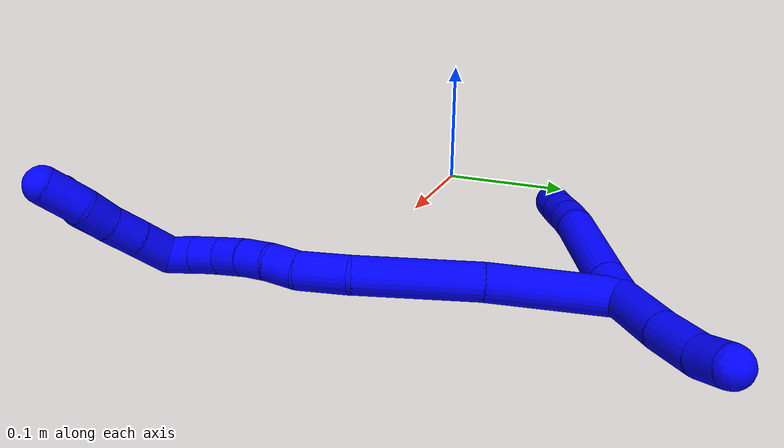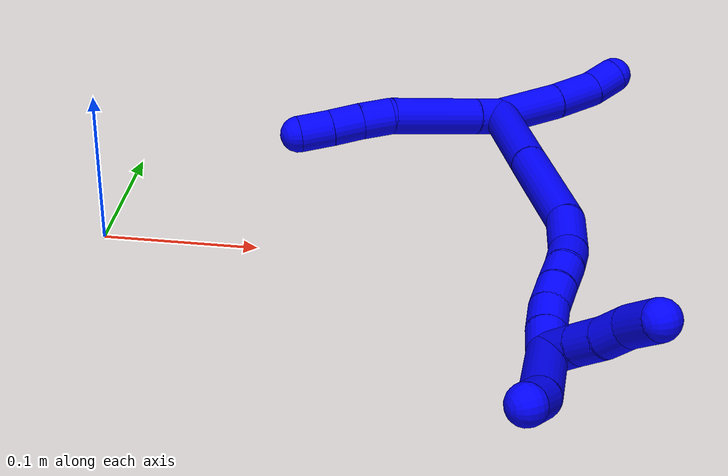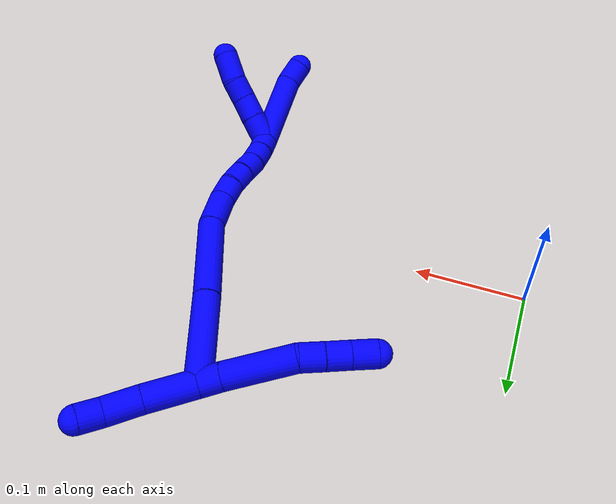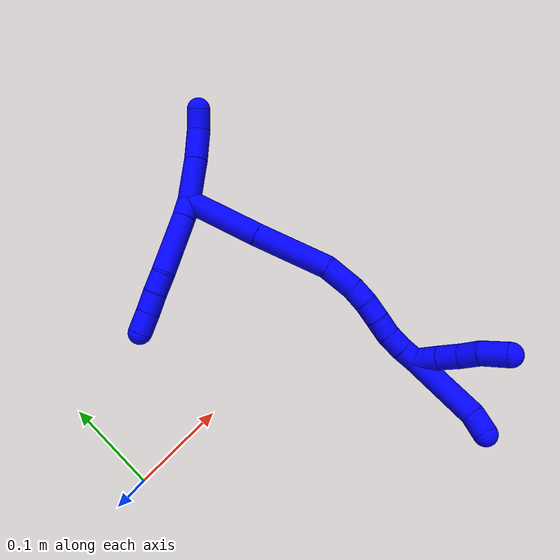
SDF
<sdf version="1.7">
 <world name="default">
  <model name="1">
   <static>0</static>
   <link name="1">
    <collision name="collision-cylinder-e_1_2_8">
     <pose>-0.001774 -0.000199 -0.009917 3.12157 -0.176949 -2.91687</pose>
     <geometry><cylinder><radius>0.0125</radius><length>0.020152</length></cylinder></geometry>
     <surface>
      <friction><ode><mu>1.16</mu><mu2>1.16</mu2><slip1>0</slip1><slip2>0</slip2></ode></friction>
      <contact><ode><kp>1e+06</kp><kd>1</kd><max_vel>0</max_vel><min_depth>0.001</min_depth></ode></contact>
     </surface>
    </collision>
    <visual name="visual-cylinder-e_1_2_8">
     <pose>-0.001774 -0.000199 -0.009917 3.12157 -0.176949 -2.91687</pose>
     <geometry><cylinder><radius>0.0125</radius><length>0.020152</length></cylinder></geometry>
     <material><ambient>0 0 1 1</ambient></material>
    </visual>
    <collision name="collision-cylinder-e_2_8_9">
     <pose>-0.00972 0.000424 -0.051223 -3.11543 -0.194121 2.87446</pose>
     <geometry><cylinder><radius>0.0125</radius><length>0.064002</length></cylinder></geometry>
     <surface>
      <friction><ode><mu>1.16</mu><mu2>1.16</mu2><slip1>0</slip1><slip2>0</slip2></ode></friction>
      <contact><ode><kp>1e+06</kp><kd>1</kd><max_vel>0</max_vel><min_depth>0.001</min_depth></ode></contact>
     </surface>
    </collision>
    <visual name="visual-cylinder-e_2_8_9">
     <pose>-0.00972 0.000424 -0.051223 -3.11543 -0.194121 2.87446</pose>
     <geometry><cylinder><radius>0.0125</radius><length>0.064002</length></cylinder></geometry>
     <material><ambient>0 0 1 1</ambient></material>
    </visual>
    <collision name="collision-cylinder-e_3_9_10">
     <pose>-0.016187 0.003443 -0.09323 -2.93759 -0.027031 0.262577</pose>
     <geometry><cylinder><radius>0.0125</radius><length>0.021694</length></cylinder></geometry>
     <surface>
      <friction><ode><mu>1.16</mu><mu2>1.16</mu2><slip1>0</slip1><slip2>0</slip2></ode></friction>
      <contact><ode><kp>1e+06</kp><kd>1</kd><max_vel>0</max_vel><min_depth>0.001</min_depth></ode></contact>
     </surface>
    </collision>
    <visual name="visual-cylinder-e_3_9_10">
     <pose>-0.016187 0.003443 -0.09323 -2.93759 -0.027031 0.262577</pose>
     <geometry><cylinder><radius>0.0125</radius><length>0.021694</length></cylinder></geometry>
     <material><ambient>0 0 1 1</ambient></material>
    </visual>
    <collision name="collision-cylinder-e_4_10_11">
     <pose>-0.016253 0.007673 -0.114358 -2.95049 0.021172 -0.22002</pose>
     <geometry><cylinder><radius>0.0125</radius><length>0.021414</length></cylinder></geometry>
     <surface>
      <friction><ode><mu>1.16</mu><mu2>1.16</mu2><slip1>0</slip1><slip2>0</slip2></ode></friction>
      <contact><ode><kp>1e+06</kp><kd>1</kd><max_vel>0</max_vel><min_depth>0.001</min_depth></ode></contact>
     </surface>
    </collision>
    <visual name="visual-cylinder-e_4_10_11">
     <pose>-0.016253 0.007673 -0.114358 -2.95049 0.021172 -0.22002</pose>
     <geometry><cylinder><radius>0.0125</radius><length>0.021414</length></cylinder></geometry>
     <material><ambient>0 0 1 1</ambient></material>
    </visual>
    <collision name="collision-cylinder-e_5_11_6">
     <pose>-0.016149 0.01202 -0.135998 -2.93657 -0.010806 0.104949</pose>
     <geometry><cylinder><radius>0.0125</radius><length>0.022738</length></cylinder></geometry>
     <surface>
      <friction><ode><mu>1.16</mu><mu2>1.16</mu2><slip1>0</slip1><slip2>0</slip2></ode></friction>
      <contact><ode><kp>1e+06</kp><kd>1</kd><max_vel>0</max_vel><min_depth>0.001</min_depth></ode></contact>
     </surface>
    </collision>
    <visual name="visual-cylinder-e_5_11_6">
     <pose>-0.016149 0.01202 -0.135998 -2.93657 -0.010806 0.104949</pose>
     <geometry><cylinder><radius>0.0125</radius><length>0.022738</length></cylinder></geometry>
     <material><ambient>0 0 1 1</ambient></material>
    </visual>
    <collision name="collision-cylinder-e_1_2_12">
     <pose>-0.000953 0.00052 0.022954 -0.022671 -0.041471 0.00047</pose>
     <geometry><cylinder><radius>0.0125</radius><length>0.045959</length></cylinder></geometry>
     <surface>
      <friction><ode><mu>1.16</mu><mu2>1.16</mu2><slip1>0</slip1><slip2>0</slip2></ode></friction>
      <contact><ode><kp>1e+06</kp><kd>1</kd><max_vel>0</max_vel><min_depth>0.001</min_depth></ode></contact>
     </surface>
    </collision>
    <visual name="visual-cylinder-e_1_2_12">
     <pose>-0.000953 0.00052 0.022954 -0.022671 -0.041471 0.00047</pose>
     <geometry><cylinder><radius>0.0125</radius><length>0.045959</length></cylinder></geometry>
     <material><ambient>0 0 1 1</ambient></material>
    </visual>
    <collision name="collision-cylinder-e_2_12_13">
     <pose>-0.003577 0.002063 0.062003 -0.063434 -0.103253 0.003279</pose>
     <geometry><cylinder><radius>0.0125</radius><length>0.032428</length></cylinder></geometry>
     <surface>
      <friction><ode><mu>1.16</mu><mu2>1.16</mu2><slip1>0</slip1><slip2>0</slip2></ode></friction>
      <contact><ode><kp>1e+06</kp><kd>1</kd><max_vel>0</max_vel><min_depth>0.001</min_depth></ode></contact>
     </surface>
    </collision>
    <visual name="visual-cylinder-e_2_12_13">
     <pose>-0.003577 0.002063 0.062003 -0.063434 -0.103253 0.003279</pose>
     <geometry><cylinder><radius>0.0125</radius><length>0.032428</length></cylinder></geometry>
     <material><ambient>0 0 1 1</ambient></material>
    </visual>
    <collision name="collision-cylinder-e_3_13_5">
     <pose>-0.008436 0.003406 0.088419 -0.031023 -0.299456 0.00468</pose>
     <geometry><cylinder><radius>0.0125</radius><length>0.021613</length></cylinder></geometry>
     <surface>
      <friction><ode><mu>1.16</mu><mu2>1.16</mu2><slip1>0</slip1><slip2>0</slip2></ode></friction>
      <contact><ode><kp>1e+06</kp><kd>1</kd><max_vel>0</max_vel><min_depth>0.001</min_depth></ode></contact>
     </surface>
    </collision>
    <visual name="visual-cylinder-e_3_13_5">
     <pose>-0.008436 0.003406 0.088419 -0.031023 -0.299456 0.00468</pose>
     <geometry><cylinder><radius>0.0125</radius><length>0.021613</length></cylinder></geometry>
     <material><ambient>0 0 1 1</ambient></material>
    </visual>
    <collision name="collision-cylinder-e_1_2_14">
     <pose>0.015651 -0.036217 -0.011678 1.88272 0.390192 0.529933</pose>
     <geometry><cylinder><radius>0.0125</radius><length>0.082293</length></cylinder></geometry>
     <surface>
      <friction><ode><mu>1.16</mu><mu2>1.16</mu2><slip1>0</slip1><slip2>0</slip2></ode></friction>
      <contact><ode><kp>1e+06</kp><kd>1</kd><max_vel>0</max_vel><min_depth>0.001</min_depth></ode></contact>
     </surface>
    </collision>
    <visual name="visual-cylinder-e_1_2_14">
     <pose>0.015651 -0.036217 -0.011678 1.88272 0.390192 0.529933</pose>
     <geometry><cylinder><radius>0.0125</radius><length>0.082293</length></cylinder></geometry>
     <material><ambient>0 0 1 1</ambient></material>
    </visual>
    <collision name="collision-cylinder-e_2_14_15">
     <pose>0.048792 -0.107766 -0.033529 1.85114 0.444029 0.582732</pose>
     <geometry><cylinder><radius>0.0125</radius><length>0.081429</length></cylinder></geometry>
     <surface>
      <friction><ode><mu>1.16</mu><mu2>1.16</mu2><slip1>0</slip1><slip2>0</slip2></ode></friction>
      <contact><ode><kp>1e+06</kp><kd>1</kd><max_vel>0</max_vel><min_depth>0.001</min_depth></ode></contact>
     </surface>
    </collision>
    <visual name="visual-cylinder-e_2_14_15">
     <pose>0.048792 -0.107766 -0.033529 1.85114 0.444029 0.582732</pose>
     <geometry><cylinder><radius>0.0125</radius><length>0.081429</length></cylinder></geometry>
     <material><ambient>0 0 1 1</ambient></material>
    </visual>
    <collision name="collision-cylinder-e_3_15_16">
     <pose>0.074236 -0.156221 -0.052003 2.1348 0.473363 0.82562</pose>
     <geometry><cylinder><radius>0.0125</radius><length>0.034895</length></cylinder></geometry>
     <surface>
      <friction><ode><mu>1.16</mu><mu2>1.16</mu2><slip1>0</slip1><slip2>0</slip2></ode></friction>
      <contact><ode><kp>1e+06</kp><kd>1</kd><max_vel>0</max_vel><min_depth>0.001</min_depth></ode></contact>
     </surface>
    </collision>
    <visual name="visual-cylinder-e_3_15_16">
     <pose>0.074236 -0.156221 -0.052003 2.1348 0.473363 0.82562</pose>
     <geometry><cylinder><radius>0.0125</radius><length>0.034895</length></cylinder></geometry>
     <material><ambient>0 0 1 1</ambient></material>
    </visual>
    <collision name="collision-cylinder-e_4_16_17">
     <pose>0.085327 -0.176779 -0.066743 2.28456 0.308837 0.656796</pose>
     <geometry><cylinder><radius>0.0125</radius><length>0.020646</length></cylinder></geometry>
     <surface>
      <friction><ode><mu>1.16</mu><mu2>1.16</mu2><slip1>0</slip1><slip2>0</slip2></ode></friction>
      <contact><ode><kp>1e+06</kp><kd>1</kd><max_vel>0</max_vel><min_depth>0.001</min_depth></ode></contact>
     </surface>
    </collision>
    <visual name="visual-cylinder-e_4_16_17">
     <pose>0.085327 -0.176779 -0.066743 2.28456 0.308837 0.656796</pose>
     <geometry><cylinder><radius>0.0125</radius><length>0.020646</length></cylinder></geometry>
     <material><ambient>0 0 1 1</ambient></material>
    </visual>
    <collision name="collision-cylinder-e_5_17_18">
     <pose>0.092622 -0.190211 -0.080205 2.43473 0.422904 1.05394</pose>
     <geometry><cylinder><radius>0.0125</radius><length>0.020257</length></cylinder></geometry>
     <surface>
      <friction><ode><mu>1.16</mu><mu2>1.16</mu2><slip1>0</slip1><slip2>0</slip2></ode></friction>
      <contact><ode><kp>1e+06</kp><kd>1</kd><max_vel>0</max_vel><min_depth>0.001</min_depth></ode></contact>
     </surface>
    </collision>
    <visual name="visual-cylinder-e_5_17_18">
     <pose>0.092622 -0.190211 -0.080205 2.43473 0.422904 1.05394</pose>
     <geometry><cylinder><radius>0.0125</radius><length>0.020257</length></cylinder></geometry>
     <material><ambient>0 0 1 1</ambient></material>
    </visual>
    <collision name="collision-cylinder-e_6_18_19">
     <pose>0.101656 -0.201626 -0.094087 2.47326 0.50903 1.28614</pose>
     <geometry><cylinder><radius>0.0125</radius><length>0.020017</length></cylinder></geometry>
     <surface>
      <friction><ode><mu>1.16</mu><mu2>1.16</mu2><slip1>0</slip1><slip2>0</slip2></ode></friction>
      <contact><ode><kp>1e+06</kp><kd>1</kd><max_vel>0</max_vel><min_depth>0.001</min_depth></ode></contact>
     </surface>
    </collision>
    <visual name="visual-cylinder-e_6_18_19">
     <pose>0.101656 -0.201626 -0.094087 2.47326 0.50903 1.28614</pose>
     <geometry><cylinder><radius>0.0125</radius><length>0.020017</length></cylinder></geometry>
     <material><ambient>0 0 1 1</ambient></material>
    </visual>
    <collision name="collision-cylinder-e_7_19_20">
     <pose>0.111647 -0.213697 -0.106774 2.28992 0.52408 1.06799</pose>
     <geometry><cylinder><radius>0.0125</radius><length>0.020435</length></cylinder></geometry>
     <surface>
      <friction><ode><mu>1.16</mu><mu2>1.16</mu2><slip1>0</slip1><slip2>0</slip2></ode></friction>
      <contact><ode><kp>1e+06</kp><kd>1</kd><max_vel>0</max_vel><min_depth>0.001</min_depth></ode></contact>
     </surface>
    </collision>
    <visual name="visual-cylinder-e_7_19_20">
     <pose>0.111647 -0.213697 -0.106774 2.28992 0.52408 1.06799</pose>
     <geometry><cylinder><radius>0.0125</radius><length>0.020435</length></cylinder></geometry>
     <material><ambient>0 0 1 1</ambient></material>
    </visual>
    <collision name="collision-cylinder-e_8_20_1">
     <pose>0.122064 -0.22735 -0.117415 2.17341 0.558218 0.998039</pose>
     <geometry><cylinder><radius>0.0125</radius><length>0.020028</length></cylinder></geometry>
     <surface>
      <friction><ode><mu>1.16</mu><mu2>1.16</mu2><slip1>0</slip1><slip2>0</slip2></ode></friction>
      <contact><ode><kp>1e+06</kp><kd>1</kd><max_vel>0</max_vel><min_depth>0.001</min_depth></ode></contact>
     </surface>
    </collision>
    <visual name="visual-cylinder-e_8_20_1">
     <pose>0.122064 -0.22735 -0.117415 2.17341 0.558218 0.998039</pose>
     <geometry><cylinder><radius>0.0125</radius><length>0.020028</length></cylinder></geometry>
     <material><ambient>0 0 1 1</ambient></material>
    </visual>
    <collision name="collision-cylinder-e_1_1_21">
     <pose>0.132415 -0.266149 -0.143618 2.16287 0.130938 0.244981</pose>
     <geometry><cylinder><radius>0.0125</radius><length>0.07731</length></cylinder></geometry>
     <surface>
      <friction><ode><mu>1.16</mu><mu2>1.16</mu2><slip1>0</slip1><slip2>0</slip2></ode></friction>
      <contact><ode><kp>1e+06</kp><kd>1</kd><max_vel>0</max_vel><min_depth>0.001</min_depth></ode></contact>
     </surface>
    </collision>
    <visual name="visual-cylinder-e_1_1_21">
     <pose>0.132415 -0.266149 -0.143618 2.16287 0.130938 0.244981</pose>
     <geometry><cylinder><radius>0.0125</radius><length>0.07731</length></cylinder></geometry>
     <material><ambient>0 0 1 1</ambient></material>
    </visual>
    <collision name="collision-cylinder-e_2_21_4">
     <pose>0.136604 -0.305666 -0.173278 2.39101 -0.075745 -0.191766</pose>
     <geometry><cylinder><radius>0.0125</radius><length>0.02269</length></cylinder></geometry>
     <surface>
      <friction><ode><mu>1.16</mu><mu2>1.16</mu2><slip1>0</slip1><slip2>0</slip2></ode></friction>
      <contact><ode><kp>1e+06</kp><kd>1</kd><max_vel>0</max_vel><min_depth>0.001</min_depth></ode></contact>
     </surface>
    </collision>
    <visual name="visual-cylinder-e_2_21_4">
     <pose>0.136604 -0.305666 -0.173278 2.39101 -0.075745 -0.191766</pose>
     <geometry><cylinder><radius>0.0125</radius><length>0.02269</length></cylinder></geometry>
     <material><ambient>0 0 1 1</ambient></material>
    </visual>
    <collision name="collision-cylinder-e_1_1_22">
     <pose>0.12479 -0.247321 -0.118863 1.31686 -0.190064 -0.14721</pose>
     <geometry><cylinder><radius>0.0125</radius><length>0.027296</length></cylinder></geometry>
     <surface>
      <friction><ode><mu>1.16</mu><mu2>1.16</mu2><slip1>0</slip1><slip2>0</slip2></ode></friction>
      <contact><ode><kp>1e+06</kp><kd>1</kd><max_vel>0</max_vel><min_depth>0.001</min_depth></ode></contact>
     </surface>
    </collision>
    <visual name="visual-cylinder-e_1_1_22">
     <pose>0.12479 -0.247321 -0.118863 1.31686 -0.190064 -0.14721</pose>
     <geometry><cylinder><radius>0.0125</radius><length>0.027296</length></cylinder></geometry>
     <material><ambient>0 0 1 1</ambient></material>
    </visual>
    <collision name="collision-cylinder-e_2_22_23">
     <pose>0.120264 -0.271258 -0.112878 1.33641 -0.171077 -0.135161</pose>
     <geometry><cylinder><radius>0.0125</radius><length>0.02288</length></cylinder></geometry>
     <surface>
      <friction><ode><mu>1.16</mu><mu2>1.16</mu2><slip1>0</slip1><slip2>0</slip2></ode></friction>
      <contact><ode><kp>1e+06</kp><kd>1</kd><max_vel>0</max_vel><min_depth>0.001</min_depth></ode></contact>
     </surface>
    </collision>
    <visual name="visual-cylinder-e_2_22_23">
     <pose>0.120264 -0.271258 -0.112878 1.33641 -0.171077 -0.135161</pose>
     <geometry><cylinder><radius>0.0125</radius><length>0.02288</length></cylinder></geometry>
     <material><ambient>0 0 1 1</ambient></material>
    </visual>
    <collision name="collision-cylinder-e_3_23_24">
     <pose>0.115311 -0.291893 -0.107456 1.28861 -0.290047 -0.218565</pose>
     <geometry><cylinder><radius>0.0125</radius><length>0.021016</length></cylinder></geometry>
     <surface>
      <friction><ode><mu>1.16</mu><mu2>1.16</mu2><slip1>0</slip1><slip2>0</slip2></ode></friction>
      <contact><ode><kp>1e+06</kp><kd>1</kd><max_vel>0</max_vel><min_depth>0.001</min_depth></ode></contact>
     </surface>
    </collision>
    <visual name="visual-cylinder-e_3_23_24">
     <pose>0.115311 -0.291893 -0.107456 1.28861 -0.290047 -0.218565</pose>
     <geometry><cylinder><radius>0.0125</radius><length>0.021016</length></cylinder></geometry>
     <material><ambient>0 0 1 1</ambient></material>
    </visual>
    <collision name="collision-cylinder-e_4_24_3">
     <pose>0.11012 -0.315736 -0.103285 1.47465 -0.152313 -0.138376</pose>
     <geometry><cylinder><radius>0.0125</radius><length>0.028808</length></cylinder></geometry>
     <surface>
      <friction><ode><mu>1.16</mu><mu2>1.16</mu2><slip1>0</slip1><slip2>0</slip2></ode></friction>
      <contact><ode><kp>1e+06</kp><kd>1</kd><max_vel>0</max_vel><min_depth>0.001</min_depth></ode></contact>
     </surface>
    </collision>
    <visual name="visual-cylinder-e_4_24_3">
     <pose>0.11012 -0.315736 -0.103285 1.47465 -0.152313 -0.138376</pose>
     <geometry><cylinder><radius>0.0125</radius><length>0.028808</length></cylinder></geometry>
     <material><ambient>0 0 1 1</ambient></material>
    </visual>
    <collision name="collision-sphere-3">
     <pose>0.107935 -0.329907 -0.101918 0 -0 0</pose>
     <geometry><sphere><radius>0.0125</radius></sphere></geometry>
     <surface>
      <friction><ode><mu>1.16</mu><mu2>1.16</mu2><slip1>0</slip1><slip2>0</slip2></ode></friction>
      <contact><ode><kp>1e+06</kp><kd>1</kd><max_vel>0</max_vel><min_depth>0.001</min_depth></ode></contact>
     </surface>
    </collision>
    <visual name="visual-sphere-3">
     <pose>0.107935 -0.329907 -0.101918 0 -0 0</pose>
     <geometry><sphere><radius>0.0125</radius></sphere></geometry>
     <material><ambient>0 0 1 1</ambient></material>
    </visual>
    <collision name="collision-sphere-24">
     <pose>0.112306 -0.301564 -0.104652 0 -0 0</pose>
     <geometry><sphere><radius>0.0125</radius></sphere></geometry>
     <surface>
      <friction><ode><mu>1.16</mu><mu2>1.16</mu2><slip1>0</slip1><slip2>0</slip2></ode></friction>
      <contact><ode><kp>1e+06</kp><kd>1</kd><max_vel>0</max_vel><min_depth>0.001</min_depth></ode></contact>
     </surface>
    </collision>
    <visual name="visual-sphere-24">
     <pose>0.112306 -0.301564 -0.104652 0 -0 0</pose>
     <geometry><sphere><radius>0.0125</radius></sphere></geometry>
     <material><ambient>0 0 1 1</ambient></material>
    </visual>
    <collision name="collision-sphere-23">
     <pose>0.118316 -0.282222 -0.11026 0 -0 0</pose>
     <geometry><sphere><radius>0.0125</radius></sphere></geometry>
     <surface>
      <friction><ode><mu>1.16</mu><mu2>1.16</mu2><slip1>0</slip1><slip2>0</slip2></ode></friction>
      <contact><ode><kp>1e+06</kp><kd>1</kd><max_vel>0</max_vel><min_depth>0.001</min_depth></ode></contact>
     </surface>
    </collision>
    <visual name="visual-sphere-23">
     <pose>0.118316 -0.282222 -0.11026 0 -0 0</pose>
     <geometry><sphere><radius>0.0125</radius></sphere></geometry>
     <material><ambient>0 0 1 1</ambient></material>
    </visual>
    <collision name="collision-sphere-22">
     <pose>0.122211 -0.260293 -0.115496 0 -0 0</pose>
     <geometry><sphere><radius>0.0125</radius></sphere></geometry>
     <surface>
      <friction><ode><mu>1.16</mu><mu2>1.16</mu2><slip1>0</slip1><slip2>0</slip2></ode></friction>
      <contact><ode><kp>1e+06</kp><kd>1</kd><max_vel>0</max_vel><min_depth>0.001</min_depth></ode></contact>
     </surface>
    </collision>
    <visual name="visual-sphere-22">
     <pose>0.122211 -0.260293 -0.115496 0 -0 0</pose>
     <geometry><sphere><radius>0.0125</radius></sphere></geometry>
     <material><ambient>0 0 1 1</ambient></material>
    </visual>
    <collision name="collision-sphere-4">
     <pose>0.135745 -0.313382 -0.181551 0 -0 0</pose>
     <geometry><sphere><radius>0.0125</radius></sphere></geometry>
     <surface>
      <friction><ode><mu>1.16</mu><mu2>1.16</mu2><slip1>0</slip1><slip2>0</slip2></ode></friction>
      <contact><ode><kp>1e+06</kp><kd>1</kd><max_vel>0</max_vel><min_depth>0.001</min_depth></ode></contact>
     </surface>
    </collision>
    <visual name="visual-sphere-4">
     <pose>0.135745 -0.313382 -0.181551 0 -0 0</pose>
     <geometry><sphere><radius>0.0125</radius></sphere></geometry>
     <material><ambient>0 0 1 1</ambient></material>
    </visual>
    <collision name="collision-sphere-21">
     <pose>0.137462 -0.29795 -0.165006 0 -0 0</pose>
     <geometry><sphere><radius>0.0125</radius></sphere></geometry>
     <surface>
      <friction><ode><mu>1.16</mu><mu2>1.16</mu2><slip1>0</slip1><slip2>0</slip2></ode></friction>
      <contact><ode><kp>1e+06</kp><kd>1</kd><max_vel>0</max_vel><min_depth>0.001</min_depth></ode></contact>
     </surface>
    </collision>
    <visual name="visual-sphere-21">
     <pose>0.137462 -0.29795 -0.165006 0 -0 0</pose>
     <geometry><sphere><radius>0.0125</radius></sphere></geometry>
     <material><ambient>0 0 1 1</ambient></material>
    </visual>
    <collision name="collision-sphere-1">
     <pose>0.127368 -0.234348 -0.12223 0 -0 0</pose>
     <geometry><sphere><radius>0.0125</radius></sphere></geometry>
     <surface>
      <friction><ode><mu>1.16</mu><mu2>1.16</mu2><slip1>0</slip1><slip2>0</slip2></ode></friction>
      <contact><ode><kp>1e+06</kp><kd>1</kd><max_vel>0</max_vel><min_depth>0.001</min_depth></ode></contact>
     </surface>
    </collision>
    <visual name="visual-sphere-1">
     <pose>0.127368 -0.234348 -0.12223 0 -0 0</pose>
     <geometry><sphere><radius>0.0125</radius></sphere></geometry>
     <material><ambient>0 0 1 1</ambient></material>
    </visual>
    <collision name="collision-sphere-6">
     <pose>-0.016272 0.014335 -0.147128 0 -0 0</pose>
     <geometry><sphere><radius>0.0125</radius></sphere></geometry>
     <surface>
      <friction><ode><mu>1.16</mu><mu2>1.16</mu2><slip1>0</slip1><slip2>0</slip2></ode></friction>
      <contact><ode><kp>1e+06</kp><kd>1</kd><max_vel>0</max_vel><min_depth>0.001</min_depth></ode></contact>
     </surface>
    </collision>
    <visual name="visual-sphere-6">
     <pose>-0.016272 0.014335 -0.147128 0 -0 0</pose>
     <geometry><sphere><radius>0.0125</radius></sphere></geometry>
     <material><ambient>0 0 1 1</ambient></material>
    </visual>
    <collision name="collision-sphere-11">
     <pose>-0.016027 0.009706 -0.124868 0 -0 0</pose>
     <geometry><sphere><radius>0.0125</radius></sphere></geometry>
     <surface>
      <friction><ode><mu>1.16</mu><mu2>1.16</mu2><slip1>0</slip1><slip2>0</slip2></ode></friction>
      <contact><ode><kp>1e+06</kp><kd>1</kd><max_vel>0</max_vel><min_depth>0.001</min_depth></ode></contact>
     </surface>
    </collision>
    <visual name="visual-sphere-11">
     <pose>-0.016027 0.009706 -0.124868 0 -0 0</pose>
     <geometry><sphere><radius>0.0125</radius></sphere></geometry>
     <material><ambient>0 0 1 1</ambient></material>
    </visual>
    <collision name="collision-sphere-10">
     <pose>-0.01648 0.005639 -0.103848 0 -0 0</pose>
     <geometry><sphere><radius>0.0125</radius></sphere></geometry>
     <surface>
      <friction><ode><mu>1.16</mu><mu2>1.16</mu2><slip1>0</slip1><slip2>0</slip2></ode></friction>
      <contact><ode><kp>1e+06</kp><kd>1</kd><max_vel>0</max_vel><min_depth>0.001</min_depth></ode></contact>
     </surface>
    </collision>
    <visual name="visual-sphere-10">
     <pose>-0.01648 0.005639 -0.103848 0 -0 0</pose>
     <geometry><sphere><radius>0.0125</radius></sphere></geometry>
     <material><ambient>0 0 1 1</ambient></material>
    </visual>
    <collision name="collision-sphere-9">
     <pose>-0.015894 0.001246 -0.082612 0 -0 0</pose>
     <geometry><sphere><radius>0.0125</radius></sphere></geometry>
     <surface>
      <friction><ode><mu>1.16</mu><mu2>1.16</mu2><slip1>0</slip1><slip2>0</slip2></ode></friction>
      <contact><ode><kp>1e+06</kp><kd>1</kd><max_vel>0</max_vel><min_depth>0.001</min_depth></ode></contact>
     </surface>
    </collision>
    <visual name="visual-sphere-9">
     <pose>-0.015894 0.001246 -0.082612 0 -0 0</pose>
     <geometry><sphere><radius>0.0125</radius></sphere></geometry>
     <material><ambient>0 0 1 1</ambient></material>
    </visual>
    <collision name="collision-sphere-2">
     <geometry><sphere><radius>0.0125</radius></sphere></geometry>
     <surface>
      <friction><ode><mu>1.16</mu><mu2>1.16</mu2><slip1>0</slip1><slip2>0</slip2></ode></friction>
      <contact><ode><kp>1e+06</kp><kd>1</kd><max_vel>0</max_vel><min_depth>0.001</min_depth></ode></contact>
     </surface>
    </collision>
    <visual name="visual-sphere-2">
     <geometry><sphere><radius>0.0125</radius></sphere></geometry>
     <material><ambient>0 0 1 1</ambient></material>
    </visual>
    <collision name="collision-sphere-19">
     <pose>0.106534 -0.207041 -0.100947 0 -0 0</pose>
     <geometry><sphere><radius>0.0125</radius></sphere></geometry>
     <surface>
      <friction><ode><mu>1.16</mu><mu2>1.16</mu2><slip1>0</slip1><slip2>0</slip2></ode></friction>
      <contact><ode><kp>1e+06</kp><kd>1</kd><max_vel>0</max_vel><min_depth>0.001</min_depth></ode></contact>
     </surface>
    </collision>
    <visual name="visual-sphere-19">
     <pose>0.106534 -0.207041 -0.100947 0 -0 0</pose>
     <geometry><sphere><radius>0.0125</radius></sphere></geometry>
     <material><ambient>0 0 1 1</ambient></material>
    </visual>
    <collision name="collision-sphere-8">
     <pose>-0.003547 -0.000397 -0.019833 0 -0 0</pose>
     <geometry><sphere><radius>0.0125</radius></sphere></geometry>
     <surface>
      <friction><ode><mu>1.16</mu><mu2>1.16</mu2><slip1>0</slip1><slip2>0</slip2></ode></friction>
      <contact><ode><kp>1e+06</kp><kd>1</kd><max_vel>0</max_vel><min_depth>0.001</min_depth></ode></contact>
     </surface>
    </collision>
    <visual name="visual-sphere-8">
     <pose>-0.003547 -0.000397 -0.019833 0 -0 0</pose>
     <geometry><sphere><radius>0.0125</radius></sphere></geometry>
     <material><ambient>0 0 1 1</ambient></material>
    </visual>
    <collision name="collision-sphere-12">
     <pose>-0.001905 0.001041 0.045908 0 -0 0</pose>
     <geometry><sphere><radius>0.0125</radius></sphere></geometry>
     <surface>
      <friction><ode><mu>1.16</mu><mu2>1.16</mu2><slip1>0</slip1><slip2>0</slip2></ode></friction>
      <contact><ode><kp>1e+06</kp><kd>1</kd><max_vel>0</max_vel><min_depth>0.001</min_depth></ode></contact>
     </surface>
    </collision>
    <visual name="visual-sphere-12">
     <pose>-0.001905 0.001041 0.045908 0 -0 0</pose>
     <geometry><sphere><radius>0.0125</radius></sphere></geometry>
     <material><ambient>0 0 1 1</ambient></material>
    </visual>
    <collision name="collision-sphere-13">
     <pose>-0.005248 0.003086 0.078098 0 -0 0</pose>
     <geometry><sphere><radius>0.0125</radius></sphere></geometry>
     <surface>
      <friction><ode><mu>1.16</mu><mu2>1.16</mu2><slip1>0</slip1><slip2>0</slip2></ode></friction>
      <contact><ode><kp>1e+06</kp><kd>1</kd><max_vel>0</max_vel><min_depth>0.001</min_depth></ode></contact>
     </surface>
    </collision>
    <visual name="visual-sphere-13">
     <pose>-0.005248 0.003086 0.078098 0 -0 0</pose>
     <geometry><sphere><radius>0.0125</radius></sphere></geometry>
     <material><ambient>0 0 1 1</ambient></material>
    </visual>
    <collision name="collision-sphere-5">
     <pose>-0.011624 0.003726 0.098739 0 -0 0</pose>
     <geometry><sphere><radius>0.0125</radius></sphere></geometry>
     <surface>
      <friction><ode><mu>1.16</mu><mu2>1.16</mu2><slip1>0</slip1><slip2>0</slip2></ode></friction>
      <contact><ode><kp>1e+06</kp><kd>1</kd><max_vel>0</max_vel><min_depth>0.001</min_depth></ode></contact>
     </surface>
    </collision>
    <visual name="visual-sphere-5">
     <pose>-0.011624 0.003726 0.098739 0 -0 0</pose>
     <geometry><sphere><radius>0.0125</radius></sphere></geometry>
     <material><ambient>0 0 1 1</ambient></material>
    </visual>
    <collision name="collision-sphere-14">
     <pose>0.031301 -0.072435 -0.023356 0 -0 0</pose>
     <geometry><sphere><radius>0.0125</radius></sphere></geometry>
     <surface>
      <friction><ode><mu>1.16</mu><mu2>1.16</mu2><slip1>0</slip1><slip2>0</slip2></ode></friction>
      <contact><ode><kp>1e+06</kp><kd>1</kd><max_vel>0</max_vel><min_depth>0.001</min_depth></ode></contact>
     </surface>
    </collision>
    <visual name="visual-sphere-14">
     <pose>0.031301 -0.072435 -0.023356 0 -0 0</pose>
     <geometry><sphere><radius>0.0125</radius></sphere></geometry>
     <material><ambient>0 0 1 1</ambient></material>
    </visual>
    <collision name="collision-sphere-15">
     <pose>0.066282 -0.143097 -0.043702 0 -0 0</pose>
     <geometry><sphere><radius>0.0125</radius></sphere></geometry>
     <surface>
      <friction><ode><mu>1.16</mu><mu2>1.16</mu2><slip1>0</slip1><slip2>0</slip2></ode></friction>
      <contact><ode><kp>1e+06</kp><kd>1</kd><max_vel>0</max_vel><min_depth>0.001</min_depth></ode></contact>
     </surface>
    </collision>
    <visual name="visual-sphere-15">
     <pose>0.066282 -0.143097 -0.043702 0 -0 0</pose>
     <geometry><sphere><radius>0.0125</radius></sphere></geometry>
     <material><ambient>0 0 1 1</ambient></material>
    </visual>
    <collision name="collision-sphere-16">
     <pose>0.08219 -0.169345 -0.060304 0 -0 0</pose>
     <geometry><sphere><radius>0.0125</radius></sphere></geometry>
     <surface>
      <friction><ode><mu>1.16</mu><mu2>1.16</mu2><slip1>0</slip1><slip2>0</slip2></ode></friction>
      <contact><ode><kp>1e+06</kp><kd>1</kd><max_vel>0</max_vel><min_depth>0.001</min_depth></ode></contact>
     </surface>
    </collision>
    <visual name="visual-sphere-16">
     <pose>0.08219 -0.169345 -0.060304 0 -0 0</pose>
     <geometry><sphere><radius>0.0125</radius></sphere></geometry>
     <material><ambient>0 0 1 1</ambient></material>
    </visual>
    <collision name="collision-sphere-17">
     <pose>0.088465 -0.184213 -0.073182 0 -0 0</pose>
     <geometry><sphere><radius>0.0125</radius></sphere></geometry>
     <surface>
      <friction><ode><mu>1.16</mu><mu2>1.16</mu2><slip1>0</slip1><slip2>0</slip2></ode></friction>
      <contact><ode><kp>1e+06</kp><kd>1</kd><max_vel>0</max_vel><min_depth>0.001</min_depth></ode></contact>
     </surface>
    </collision>
    <visual name="visual-sphere-17">
     <pose>0.088465 -0.184213 -0.073182 0 -0 0</pose>
     <geometry><sphere><radius>0.0125</radius></sphere></geometry>
     <material><ambient>0 0 1 1</ambient></material>
    </visual>
    <collision name="collision-sphere-18">
     <pose>0.096779 -0.19621 -0.087228 0 -0 0</pose>
     <geometry><sphere><radius>0.0125</radius></sphere></geometry>
     <surface>
      <friction><ode><mu>1.16</mu><mu2>1.16</mu2><slip1>0</slip1><slip2>0</slip2></ode></friction>
      <contact><ode><kp>1e+06</kp><kd>1</kd><max_vel>0</max_vel><min_depth>0.001</min_depth></ode></contact>
     </surface>
    </collision>
    <visual name="visual-sphere-18">
     <pose>0.096779 -0.19621 -0.087228 0 -0 0</pose>
     <geometry><sphere><radius>0.0125</radius></sphere></geometry>
     <material><ambient>0 0 1 1</ambient></material>
    </visual>
    <collision name="collision-sphere-20">
     <pose>0.11676 -0.220353 -0.112601 0 -0 0</pose>
     <geometry><sphere><radius>0.0125</radius></sphere></geometry>
     <surface>
      <friction><ode><mu>1.16</mu><mu2>1.16</mu2><slip1>0</slip1><slip2>0</slip2></ode></friction>
      <contact><ode><kp>1e+06</kp><kd>1</kd><max_vel>0</max_vel><min_depth>0.001</min_depth></ode></contact>
     </surface>
    </collision>
    <visual name="visual-sphere-20">
     <pose>0.11676 -0.220353 -0.112601 0 -0 0</pose>
     <geometry><sphere><radius>0.0125</radius></sphere></geometry>
     <material><ambient>0 0 1 1</ambient></material>
    </visual>
    <inertial>
     <pose>0.055032 -0.123554 -0.062782 0 -0 0</pose>
     <mass>0.75</mass>
     <inertia><ixx>0.000207</ixx><ixy>0</ixy><ixz>0</ixz><iyy>5e-05</iyy><iyz>0</iyz><izz>7.8e-05</izz></inertia>
    </inertial>
   </link>
   <pose>0.238936 0.179712 0.011499 -1.62877 1.08477 -1.01087</pose>
  </model>
 </world>
</sdf>
